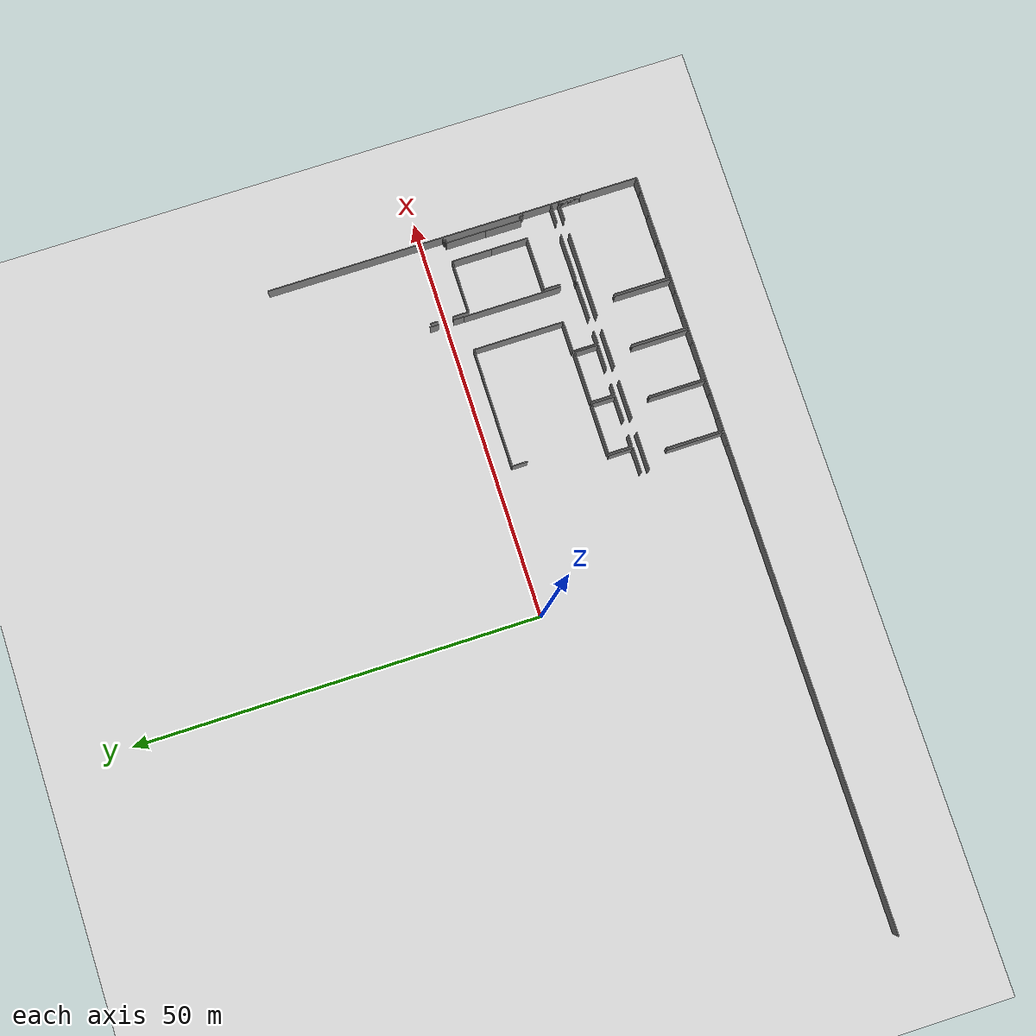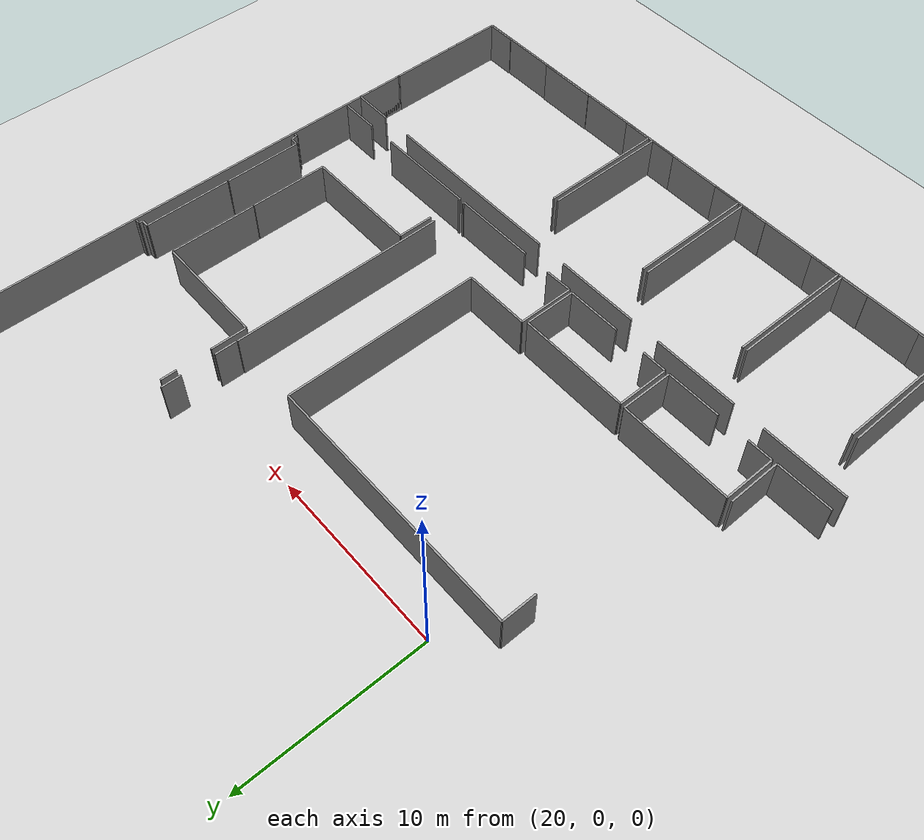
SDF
<sdf version="1.6">
 <world name="default">
  <model name="ground_plane">
   <static>1</static>
   <link name="link">
    <collision name="collision">
     <geometry><plane><normal>0 0 1</normal><size>100 100</size></plane></geometry>
     <surface><friction><ode><mu>100</mu><mu2>50</mu2></ode></friction></surface>
    </collision>
    <visual name="visual">
     <cast_shadows>0</cast_shadows>
     <geometry><plane><normal>0 0 1</normal><size>100 100</size></plane></geometry>
     <material>
      <script><uri>file://media/materials/scripts/gazebo.material</uri><name>Gazebo/Grey</name></script>
     </material>
    </visual>
   </link>
  </model>
  <model name="50045233">
   <static>1</static>
   <link name="Wall_242">
    <collision name="Wall_242_Collision">
     <geometry><box><size>4.74502712477 0.1 2.5</size></box></geometry>
     <pose>2.37251356239 0 1.25 0 0 0</pose>
    </collision>
    <visual name="Wall_242_Visual">
     <pose>2.37251356239 0 1.25 0 0 0</pose>
     <geometry><box><size>4.74502712477 0.1 2.5</size></box></geometry>
     <material>
      <script><uri>file://media/materials/scripts/gazebo.material</uri><name>Gazebo/Grey</name></script>
      <ambient>1 1 1 1</ambient>
     </material>
    </visual>
    <pose>59.1978680879 -36.5489673551 0 0 0 0.0</pose>
   </link>
   <link name="Wall_243">
    <collision name="Wall_243_Collision">
     <geometry><box><size>4.79781732813 0.1 2.5</size></box></geometry>
     <pose>2.39890866407 0 1.25 0 0 0</pose>
    </collision>
    <visual name="Wall_243_Visual">
     <pose>2.39890866407 0 1.25 0 0 0</pose>
     <geometry><box><size>4.79781732813 0.1 2.5</size></box></geometry>
     <material>
      <script><uri>file://media/materials/scripts/gazebo.material</uri><name>Gazebo/Grey</name></script>
      <ambient>1 1 1 1</ambient>
     </material>
    </visual>
    <pose>65.7041337521 -36.5489673551 0 0 0 0.0</pose>
   </link>
   <link name="Wall_244">
    <collision name="Wall_244_Collision">
     <geometry><box><size>4.74756511532 0.1 2.5</size></box></geometry>
     <pose>2.37378255766 0 1.25 0 0 0</pose>
    </collision>
    <visual name="Wall_244_Visual">
     <pose>2.37378255766 0 1.25 0 0 0</pose>
     <geometry><box><size>4.74756511532 0.1 2.5</size></box></geometry>
     <material>
      <script><uri>file://media/materials/scripts/gazebo.material</uri><name>Gazebo/Grey</name></script>
      <ambient>1 1 1 1</ambient>
     </material>
    </visual>
    <pose>72.2541797532 -36.5489673551 0 0 0 0.0</pose>
   </link>
   <link name="Wall_245">
    <collision name="Wall_245_Collision">
     <geometry><box><size>10.6374797754 0.1 2.5</size></box></geometry>
     <pose>5.31873988769 0 1.25 0 0 0</pose>
    </collision>
    <visual name="Wall_245_Visual">
     <pose>5.31873988769 0 1.25 0 0 0</pose>
     <geometry><box><size>10.6374797754 0.1 2.5</size></box></geometry>
     <material>
      <script><uri>file://media/materials/scripts/gazebo.material</uri><name>Gazebo/Grey</name></script>
      <ambient>1 1 1 1</ambient>
     </material>
    </visual>
    <pose>78.7707242791 -36.5489673551 0 0 0 0.0</pose>
   </link>
   <link name="Wall_246">
    <collision name="Wall_246_Collision">
     <geometry><box><size>2.27657751975 0.1 2.5</size></box></geometry>
     <pose>1.13828875987 0 1.25 0 0 0</pose>
    </collision>
    <visual name="Wall_246_Visual">
     <pose>1.13828875987 0 1.25 0 0 0</pose>
     <geometry><box><size>2.27657751975 0.1 2.5</size></box></geometry>
     <material>
      <script><uri>file://media/materials/scripts/gazebo.material</uri><name>Gazebo/Grey</name></script>
      <ambient>1 1 1 1</ambient>
     </material>
    </visual>
    <pose>91.2660131341 -36.5489673551 0 0 0 0.0</pose>
   </link>
   <link name="Wall_247">
    <collision name="Wall_247_Collision">
     <geometry><box><size>2.67707242791 0.1 2.5</size></box></geometry>
     <pose>1.33853621395 0 1.25 0 0 0</pose>
    </collision>
    <visual name="Wall_247_Visual">
     <pose>1.33853621395 0 1.25 0 0 0</pose>
     <geometry><box><size>2.67707242791 0.1 2.5</size></box></geometry>
     <material>
      <script><uri>file://media/materials/scripts/gazebo.material</uri><name>Gazebo/Grey</name></script>
      <ambient>1 1 1 1</ambient>
     </material>
    </visual>
    <pose>93.5425906538 -36.5489673551 0 0 0 -1.57079632679</pose>
   </link>
   <link name="Wall_265">
    <collision name="Wall_265_Collision">
     <geometry><box><size>1.57901081818 0.1 2.5</size></box></geometry>
     <pose>0.789505409092 0 1.25 0 0 0</pose>
    </collision>
    <visual name="Wall_265_Visual">
     <pose>0.789505409092 0 1.25 0 0 0</pose>
     <geometry><box><size>1.57901081818 0.1 2.5</size></box></geometry>
     <material>
      <script><uri>file://media/materials/scripts/gazebo.material</uri><name>Gazebo/Grey</name></script>
      <ambient>1 1 1 1</ambient>
     </material>
    </visual>
    <pose>60.8834745091 -46.4015735541 0 0 0 3.14159265359</pose>
   </link>
   <link name="Wall_268">
    <collision name="Wall_268_Collision">
     <geometry><box><size>7.07969804936 0.1 2.5</size></box></geometry>
     <pose>3.53984902468 0 1.25 0 0 0</pose>
    </collision>
    <visual name="Wall_268_Visual">
     <pose>3.53984902468 0 1.25 0 0 0</pose>
     <geometry><box><size>7.07969804936 0.1 2.5</size></box></geometry>
     <material>
      <script><uri>file://media/materials/scripts/gazebo.material</uri><name>Gazebo/Grey</name></script>
      <ambient>1 1 1 1</ambient>
     </material>
    </visual>
    <pose>60.8457853494 -39.3219758256 0 0 0 -1.56547274698</pose>
   </link>
   <link name="Wall_269">
    <collision name="Wall_269_Collision">
     <geometry><box><size>1.60895910663 0.1 2.5</size></box></geometry>
     <pose>0.804479553314 0 1.25 0 0 0</pose>
    </collision>
    <visual name="Wall_269_Visual">
     <pose>0.804479553314 0 1.25 0 0 0</pose>
     <geometry><box><size>1.60895910663 0.1 2.5</size></box></geometry>
     <material>
      <script><uri>file://media/materials/scripts/gazebo.material</uri><name>Gazebo/Grey</name></script>
      <ambient>1 1 1 1</ambient>
     </material>
    </visual>
    <pose>67.4049681165 -46.3905332953 0 0 0 3.14159265359</pose>
   </link>
   <link name="Wall_270">
    <collision name="Wall_270_Collision">
     <geometry><box><size>1.60350242695 0.1 2.5</size></box></geometry>
     <pose>0.801751213477 0 1.25 0 0 0</pose>
    </collision>
    <visual name="Wall_270_Visual">
     <pose>0.801751213477 0 1.25 0 0 0</pose>
     <geometry><box><size>1.60350242695 0.1 2.5</size></box></geometry>
     <material>
      <script><uri>file://media/materials/scripts/gazebo.material</uri><name>Gazebo/Grey</name></script>
      <ambient>1 1 1 1</ambient>
     </material>
    </visual>
    <pose>62.7312585261 -46.3905332953 0 0 0 3.14159265359</pose>
   </link>
   <link name="Wall_271">
    <collision name="Wall_271_Collision">
     <geometry><box><size>7.06449668475 0.1 2.5</size></box></geometry>
     <pose>3.53224834237 0 1.25 0 0 0</pose>
    </collision>
    <visual name="Wall_271_Visual">
     <pose>3.53224834237 0 1.25 0 0 0</pose>
     <geometry><box><size>7.06449668475 0.1 2.5</size></box></geometry>
     <material>
      <script><uri>file://media/materials/scripts/gazebo.material</uri><name>Gazebo/Grey</name></script>
      <ambient>1 1 1 1</ambient>
     </material>
    </visual>
    <pose>61.1277560991 -46.3905332953 0 0 0 1.57079632679</pose>
   </link>
   <link name="Wall_272">
    <collision name="Wall_272_Collision">
     <geometry><box><size>7.06451337178 0.1 2.5</size></box></geometry>
     <pose>3.53225668589 0 1.25 0 0 0</pose>
    </collision>
    <visual name="Wall_272_Visual">
     <pose>3.53225668589 0 1.25 0 0 0</pose>
     <geometry><box><size>7.06451337178 0.1 2.5</size></box></geometry>
     <material>
      <script><uri>file://media/materials/scripts/gazebo.material</uri><name>Gazebo/Grey</name></script>
      <ambient>1 1 1 1</ambient>
     </material>
    </visual>
    <pose>67.3896132737 -39.3260366105 0 0 0 -1.56862280767</pose>
   </link>
   <link name="Wall_273">
    <collision name="Wall_273_Collision">
     <geometry><box><size>1.57774182291 0.1 2.5</size></box></geometry>
     <pose>0.788870911456 0 1.25 0 0 0</pose>
    </collision>
    <visual name="Wall_273_Visual">
     <pose>0.788870911456 0 1.25 0 0 0</pose>
     <geometry><box><size>1.57774182291 0.1 2.5</size></box></geometry>
     <material>
      <script><uri>file://media/materials/scripts/gazebo.material</uri><name>Gazebo/Grey</name></script>
      <ambient>1 1 1 1</ambient>
     </material>
    </visual>
    <pose>73.8934678468 -46.4015735541 0 0 0 3.14159265359</pose>
   </link>
   <link name="Wall_274">
    <collision name="Wall_274_Collision">
     <geometry><box><size>1.63243551918 0.1 2.5</size></box></geometry>
     <pose>0.816217759589 0 1.25 0 0 0</pose>
    </collision>
    <visual name="Wall_274_Visual">
     <pose>0.816217759589 0 1.25 0 0 0</pose>
     <geometry><box><size>1.63243551918 0.1 2.5</size></box></geometry>
     <material>
      <script><uri>file://media/materials/scripts/gazebo.material</uri><name>Gazebo/Grey</name></script>
      <ambient>1 1 1 1</ambient>
     </material>
    </visual>
    <pose>69.2757209479 -46.4015735541 0 0 0 3.14159265359</pose>
   </link>
   <link name="Wall_275">
    <collision name="Wall_275_Collision">
     <geometry><box><size>7.07553694362 0.1 2.5</size></box></geometry>
     <pose>3.53776847181 0 1.25 0 0 0</pose>
    </collision>
    <visual name="Wall_275_Visual">
     <pose>3.53776847181 0 1.25 0 0 0</pose>
     <geometry><box><size>7.07553694362 0.1 2.5</size></box></geometry>
     <material>
      <script><uri>file://media/materials/scripts/gazebo.material</uri><name>Gazebo/Grey</name></script>
      <ambient>1 1 1 1</ambient>
     </material>
    </visual>
    <pose>67.6432854288 -46.4015735541 0 0 0 1.57079632679</pose>
   </link>
   <link name="Wall_276">
    <collision name="Wall_276_Collision">
     <geometry><box><size>7.07556792478 0.1 2.5</size></box></geometry>
     <pose>3.53778396239 0 1.25 0 0 0</pose>
    </collision>
    <visual name="Wall_276_Visual">
     <pose>3.53778396239 0 1.25 0 0 0</pose>
     <geometry><box><size>7.07556792478 0.1 2.5</size></box></geometry>
     <material>
      <script><uri>file://media/materials/scripts/gazebo.material</uri><name>Gazebo/Grey</name></script>
      <ambient>1 1 1 1</ambient>
     </material>
    </visual>
    <pose>73.8725294248 -39.3260366105 0 0 0 -1.56783706575</pose>
   </link>
   <link name="Wall_277">
    <collision name="Wall_277_Collision">
     <geometry><box><size>1.56149868342 0.1 2.5</size></box></geometry>
     <pose>0.780749341709 0 1.25 0 0 0</pose>
    </collision>
    <visual name="Wall_277_Visual">
     <pose>0.780749341709 0 1.25 0 0 0</pose>
     <geometry><box><size>1.56149868342 0.1 2.5</size></box></geometry>
     <material>
      <script><uri>file://media/materials/scripts/gazebo.material</uri><name>Gazebo/Grey</name></script>
      <ambient>1 1 1 1</ambient>
     </material>
    </visual>
    <pose>80.3647092415 -46.4175628946 0 0 0 3.14159265359</pose>
   </link>
   <link name="Wall_278">
    <collision name="Wall_278_Collision">
     <geometry><box><size>1.59664985248 0.1 2.5</size></box></geometry>
     <pose>0.79832492624 0 1.25 0 0 0</pose>
    </collision>
    <visual name="Wall_278_Visual">
     <pose>0.79832492624 0 1.25 0 0 0</pose>
     <geometry><box><size>1.59664985248 0.1 2.5</size></box></geometry>
     <material>
      <script><uri>file://media/materials/scripts/gazebo.material</uri><name>Gazebo/Grey</name></script>
      <ambient>1 1 1 1</ambient>
     </material>
    </visual>
    <pose>75.7698042575 -46.4175628946 0 0 0 3.14159265359</pose>
   </link>
   <link name="Wall_279">
    <collision name="Wall_279_Collision">
     <geometry><box><size>7.0921607817 0.1 2.5</size></box></geometry>
     <pose>3.54608039085 0 1.25 0 0 0</pose>
    </collision>
    <visual name="Wall_279_Visual">
     <pose>3.54608039085 0 1.25 0 0 0</pose>
     <geometry><box><size>7.0921607817 0.1 2.5</size></box></geometry>
     <material>
      <script><uri>file://media/materials/scripts/gazebo.material</uri><name>Gazebo/Grey</name></script>
      <ambient>1 1 1 1</ambient>
     </material>
    </visual>
    <pose>74.173154405 -46.4175628946 0 0 0 1.57079632679</pose>
   </link>
   <link name="Wall_280">
    <collision name="Wall_280_Collision">
     <geometry><box><size>7.0921859865 0.1 2.5</size></box></geometry>
     <pose>3.54609299325 0 1.25 0 0 0</pose>
    </collision>
    <visual name="Wall_280_Visual">
     <pose>3.54609299325 0 1.25 0 0 0</pose>
     <geometry><box><size>7.0921859865 0.1 2.5</size></box></geometry>
     <material>
      <script><uri>file://media/materials/scripts/gazebo.material</uri><name>Gazebo/Grey</name></script>
      <ambient>1 1 1 1</ambient>
     </material>
    </visual>
    <pose>80.383617271 -39.3254021129 0 0 0 -1.57346236686</pose>
   </link>
   <link name="Wall_281">
    <collision name="Wall_281_Collision">
     <geometry><box><size>1.70045366581 0.1 2.5</size></box></geometry>
     <pose>0.850226832905 0 1.25 0 0 0</pose>
    </collision>
    <visual name="Wall_281_Visual">
     <pose>0.850226832905 0 1.25 0 0 0</pose>
     <geometry><box><size>1.70045366581 0.1 2.5</size></box></geometry>
     <material>
      <script><uri>file://media/materials/scripts/gazebo.material</uri><name>Gazebo/Grey</name></script>
      <ambient>1 1 1 1</ambient>
     </material>
    </visual>
    <pose>93.5425906538 -46.3883760033 0 0 0 3.14159265359</pose>
   </link>
   <link name="Wall_282">
    <collision name="Wall_282_Collision">
     <geometry><box><size>3.43948478792 0.1 2.5</size></box></geometry>
     <pose>1.71974239396 0 1.25 0 0 0</pose>
    </collision>
    <visual name="Wall_282_Visual">
     <pose>1.71974239396 0 1.25 0 0 0</pose>
     <geometry><box><size>3.43948478792 0.1 2.5</size></box></geometry>
     <material>
      <script><uri>file://media/materials/scripts/gazebo.material</uri><name>Gazebo/Grey</name></script>
      <ambient>1 1 1 1</ambient>
     </material>
    </visual>
    <pose>88.7568287808 -46.3883760033 0 0 0 3.14159265359</pose>
   </link>
   <link name="Wall_283">
    <collision name="Wall_283_Collision">
     <geometry><box><size>1.63154722249 0.1 2.5</size></box></geometry>
     <pose>0.815773611243 0 1.25 0 0 0</pose>
    </collision>
    <visual name="Wall_283_Visual">
     <pose>0.815773611243 0 1.25 0 0 0</pose>
     <geometry><box><size>1.63154722249 0.1 2.5</size></box></geometry>
     <material>
      <script><uri>file://media/materials/scripts/gazebo.material</uri><name>Gazebo/Grey</name></script>
      <ambient>1 1 1 1</ambient>
     </material>
    </visual>
    <pose>82.2873639796 -46.3883760033 0 0 0 3.14159265359</pose>
   </link>
   <link name="Wall_284">
    <collision name="Wall_284_Collision">
     <geometry><box><size>7.07020716348 0.1 2.5</size></box></geometry>
     <pose>3.53510358174 0 1.25 0 0 0</pose>
    </collision>
    <visual name="Wall_284_Visual">
     <pose>3.53510358174 0 1.25 0 0 0</pose>
     <geometry><box><size>7.07020716348 0.1 2.5</size></box></geometry>
     <material>
      <script><uri>file://media/materials/scripts/gazebo.material</uri><name>Gazebo/Grey</name></script>
      <ambient>1 1 1 1</ambient>
     </material>
    </visual>
    <pose>80.6558167571 -46.3883760033 0 0 0 1.57079632679</pose>
   </link>
   <link name="Wall_285">
    <collision name="Wall_285_Collision">
     <geometry><box><size>7.07021099449 0.1 2.5</size></box></geometry>
     <pose>3.53510549725 0 1.25 0 0 0</pose>
    </collision>
    <visual name="Wall_285_Visual">
     <pose>3.53510549725 0 1.25 0 0 0</pose>
     <geometry><box><size>7.07021099449 0.1 2.5</size></box></geometry>
     <material>
      <script><uri>file://media/materials/scripts/gazebo.material</uri><name>Gazebo/Grey</name></script>
      <ambient>1 1 1 1</ambient>
     </material>
    </visual>
    <pose>93.5352304813 -39.3181688398 0 0 0 -1.56975531488</pose>
   </link>
   <link name="Wall_286">
    <collision name="Wall_286_Collision">
     <geometry><box><size>0.113828875987 0.1 2.5</size></box></geometry>
     <pose>0.0569144379937 0 1.25 0 0 0</pose>
    </collision>
    <visual name="Wall_286_Visual">
     <pose>0.0569144379937 0 1.25 0 0 0</pose>
     <geometry><box><size>0.113828875987 0.1 2.5</size></box></geometry>
     <material>
      <script><uri>file://media/materials/scripts/gazebo.material</uri><name>Gazebo/Grey</name></script>
      <ambient>1 1 1 1</ambient>
     </material>
    </visual>
    <pose>83.7695504584 -35.565369119 0 0 0 1.57079632679</pose>
   </link>
   <link name="Wall_287">
    <collision name="Wall_287_Collision">
     <geometry><box><size>1.9993020526 0.1 2.5</size></box></geometry>
     <pose>0.9996510263 0 1.25 0 0 0</pose>
    </collision>
    <visual name="Wall_287_Visual">
     <pose>0.9996510263 0 1.25 0 0 0</pose>
     <geometry><box><size>1.9993020526 0.1 2.5</size></box></geometry>
     <material>
      <script><uri>file://media/materials/scripts/gazebo.material</uri><name>Gazebo/Grey</name></script>
      <ambient>1 1 1 1</ambient>
     </material>
    </visual>
    <pose>83.7695504584 -33.5461438406 0 0 0 1.57079632679</pose>
   </link>
   <link name="Wall_288">
    <collision name="Wall_288_Collision">
     <geometry><box><size>6.6105770756 0.1 2.5</size></box></geometry>
     <pose>3.3052885378 0 1.25 0 0 0</pose>
    </collision>
    <visual name="Wall_288_Visual">
     <pose>3.3052885378 0 1.25 0 0 0</pose>
     <geometry><box><size>6.6105770756 0.1 2.5</size></box></geometry>
     <material>
      <script><uri>file://media/materials/scripts/gazebo.material</uri><name>Gazebo/Grey</name></script>
      <ambient>1 1 1 1</ambient>
     </material>
    </visual>
    <pose>83.7695504584 -31.546841788 0 0 0 0.0</pose>
   </link>
   <link name="Wall_289">
    <collision name="Wall_289_Collision">
     <geometry><box><size>4.45100092002 0.1 2.5</size></box></geometry>
     <pose>2.22550046001 0 1.25 0 0 0</pose>
    </collision>
    <visual name="Wall_289_Visual">
     <pose>2.22550046001 0 1.25 0 0 0</pose>
     <geometry><box><size>4.45100092002 0.1 2.5</size></box></geometry>
     <material>
      <script><uri>file://media/materials/scripts/gazebo.material</uri><name>Gazebo/Grey</name></script>
      <ambient>1 1 1 1</ambient>
     </material>
    </visual>
    <pose>90.380127534 -31.546841788 0 0 0 1.57079632679</pose>
   </link>
   <link name="Wall_290">
    <collision name="Wall_290_Collision">
     <geometry><box><size>4.45100092002 0.1 2.5</size></box></geometry>
     <pose>2.22550046001 0 1.25 0 0 0</pose>
    </collision>
    <visual name="Wall_290_Visual">
     <pose>2.22550046001 0 1.25 0 0 0</pose>
     <geometry><box><size>4.45100092002 0.1 2.5</size></box></geometry>
     <material>
      <script><uri>file://media/materials/scripts/gazebo.material</uri><name>Gazebo/Grey</name></script>
      <ambient>1 1 1 1</ambient>
     </material>
    </visual>
    <pose>92.7465499191 -27.095840868 0 0 0 -1.57079632679</pose>
   </link>
   <link name="Wall_291">
    <collision name="Wall_291_Collision">
     <geometry><box><size>0.474984930681 0.1 2.5</size></box></geometry>
     <pose>0.237492465341 0 1.25 0 0 0</pose>
    </collision>
    <visual name="Wall_291_Visual">
     <pose>0.237492465341 0 1.25 0 0 0</pose>
     <geometry><box><size>0.474984930681 0.1 2.5</size></box></geometry>
     <material>
      <script><uri>file://media/materials/scripts/gazebo.material</uri><name>Gazebo/Grey</name></script>
      <ambient>1 1 1 1</ambient>
     </material>
    </visual>
    <pose>92.7465499191 -31.546841788 0 0 0 0.0</pose>
   </link>
   <link name="Wall_292">
    <collision name="Wall_292_Collision">
     <geometry><box><size>0.364836140985 0.1 2.5</size></box></geometry>
     <pose>0.182418070493 0 1.25 0 0 0</pose>
    </collision>
    <visual name="Wall_292_Visual">
     <pose>0.182418070493 0 1.25 0 0 0</pose>
     <geometry><box><size>0.364836140985 0.1 2.5</size></box></geometry>
     <material>
      <script><uri>file://media/materials/scripts/gazebo.material</uri><name>Gazebo/Grey</name></script>
      <ambient>1 1 1 1</ambient>
     </material>
    </visual>
    <pose>93.2215348498 -31.546841788 0 0 0 -1.57079632679</pose>
   </link>
   <link name="Wall_293">
    <collision name="Wall_293_Collision">
     <geometry><box><size>0.192379683386 0.1 2.5</size></box></geometry>
     <pose>0.0961898416928 0 1.25 0 0 0</pose>
    </collision>
    <visual name="Wall_293_Visual">
     <pose>0.0961898416928 0 1.25 0 0 0</pose>
     <geometry><box><size>0.192379683386 0.1 2.5</size></box></geometry>
     <material>
      <script><uri>file://media/materials/scripts/gazebo.material</uri><name>Gazebo/Grey</name></script>
      <ambient>1 1 1 1</ambient>
     </material>
    </visual>
    <pose>93.2215348498 -31.911677929 0 0 0 0.0</pose>
   </link>
   <link name="Wall_294">
    <collision name="Wall_294_Collision">
     <geometry><box><size>2.20069160242 0.1 2.5</size></box></geometry>
     <pose>1.10034580121 0 1.25 0 0 0</pose>
    </collision>
    <visual name="Wall_294_Visual">
     <pose>1.10034580121 0 1.25 0 0 0</pose>
     <geometry><box><size>2.20069160242 0.1 2.5</size></box></geometry>
     <material>
      <script><uri>file://media/materials/scripts/gazebo.material</uri><name>Gazebo/Grey</name></script>
      <ambient>1 1 1 1</ambient>
     </material>
    </visual>
    <pose>93.4139145332 -35.5387202183 0 0 0 3.14159265359</pose>
   </link>
   <link name="Wall_295">
    <collision name="Wall_295_Collision">
     <geometry><box><size>5.77931971269 0.1 2.5</size></box></geometry>
     <pose>2.88965985634 0 1.25 0 0 0</pose>
    </collision>
    <visual name="Wall_295_Visual">
     <pose>2.88965985634 0 1.25 0 0 0</pose>
     <geometry><box><size>5.77931971269 0.1 2.5</size></box></geometry>
     <material>
      <script><uri>file://media/materials/scripts/gazebo.material</uri><name>Gazebo/Grey</name></script>
      <ambient>1 1 1 1</ambient>
     </material>
    </visual>
    <pose>89.5488087307 -35.5387202183 0 0 0 -3.13698155808</pose>
   </link>
   <link name="Wall_296">
    <collision name="Wall_296_Collision">
     <geometry><box><size>3.15218425811 0.1 2.5</size></box></geometry>
     <pose>1.57609212906 0 1.25 0 0 0</pose>
    </collision>
    <visual name="Wall_296_Visual">
     <pose>1.57609212906 0 1.25 0 0 0</pose>
     <geometry><box><size>3.15218425811 0.1 2.5</size></box></geometry>
     <material>
      <script><uri>file://media/materials/scripts/gazebo.material</uri><name>Gazebo/Grey</name></script>
      <ambient>1 1 1 1</ambient>
     </material>
    </visual>
    <pose>75.5634656261 -35.6038196758 0 0 0 1.57079632679</pose>
   </link>
   <link name="Wall_297">
    <collision name="Wall_297_Collision">
     <geometry><box><size>3.72132863805 0.1 2.5</size></box></geometry>
     <pose>1.86066431903 0 1.25 0 0 0</pose>
    </collision>
    <visual name="Wall_297_Visual">
     <pose>1.86066431903 0 1.25 0 0 0</pose>
     <geometry><box><size>3.72132863805 0.1 2.5</size></box></geometry>
     <material>
      <script><uri>file://media/materials/scripts/gazebo.material</uri><name>Gazebo/Grey</name></script>
      <ambient>1 1 1 1</ambient>
     </material>
    </visual>
    <pose>75.5634656261 -32.4516354177 0 0 0 0.0</pose>
   </link>
   <link name="Wall_298">
    <collision name="Wall_298_Collision">
     <geometry><box><size>11.0757907427 0.1 2.5</size></box></geometry>
     <pose>5.53789537134 0 1.25 0 0 0</pose>
    </collision>
    <visual name="Wall_298_Visual">
     <pose>5.53789537134 0 1.25 0 0 0</pose>
     <geometry><box><size>11.0757907427 0.1 2.5</size></box></geometry>
     <material>
      <script><uri>file://media/materials/scripts/gazebo.material</uri><name>Gazebo/Grey</name></script>
      <ambient>1 1 1 1</ambient>
     </material>
    </visual>
    <pose>79.2847942641 -32.4516354177 0 0 0 1.57079632679</pose>
   </link>
   <link name="Wall_299">
    <collision name="Wall_299_Collision">
     <geometry><box><size>12.169664668 0.1 2.5</size></box></geometry>
     <pose>6.084832334 0 1.25 0 0 0</pose>
    </collision>
    <visual name="Wall_299_Visual">
     <pose>6.084832334 0 1.25 0 0 0</pose>
     <geometry><box><size>12.169664668 0.1 2.5</size></box></geometry>
     <material>
      <script><uri>file://media/materials/scripts/gazebo.material</uri><name>Gazebo/Grey</name></script>
      <ambient>1 1 1 1</ambient>
     </material>
    </visual>
    <pose>83.458519717 -21.375844675 0 0 0 -1.57079632679</pose>
   </link>
   <link name="Wall_300">
    <collision name="Wall_300_Collision">
     <geometry><box><size>0.114209574569 0.1 2.5</size></box></geometry>
     <pose>0.0571047872847 0 1.25 0 0 0</pose>
    </collision>
    <visual name="Wall_300_Visual">
     <pose>0.0571047872847 0 1.25 0 0 0</pose>
     <geometry><box><size>0.114209574569 0.1 2.5</size></box></geometry>
     <material>
      <script><uri>file://media/materials/scripts/gazebo.material</uri><name>Gazebo/Grey</name></script>
      <ambient>1 1 1 1</ambient>
     </material>
    </visual>
    <pose>83.458519717 -35.4490022525 0 0 0 -1.57079632679</pose>
   </link>
   <link name="Wall_301">
    <collision name="Wall_301_Collision">
     <geometry><box><size>4.70708416611 0.1 2.5</size></box></geometry>
     <pose>2.35354208306 0 1.25 0 0 0</pose>
    </collision>
    <visual name="Wall_301_Visual">
     <pose>2.35354208306 0 1.25 0 0 0</pose>
     <geometry><box><size>4.70708416611 0.1 2.5</size></box></geometry>
     <material>
      <script><uri>file://media/materials/scripts/gazebo.material</uri><name>Gazebo/Grey</name></script>
      <ambient>1 1 1 1</ambient>
     </material>
    </visual>
    <pose>83.458519717 -35.563211827 0 0 0 3.14159265359</pose>
   </link>
   <link name="Wall_302">
    <collision name="Wall_302_Collision">
     <geometry><box><size>1.55263923967 0.1 2.5</size></box></geometry>
     <pose>0.776319619837 0 1.25 0 0 0</pose>
    </collision>
    <visual name="Wall_302_Visual">
     <pose>0.776319619837 0 1.25 0 0 0</pose>
     <geometry><box><size>1.55263923967 0.1 2.5</size></box></geometry>
     <material>
      <script><uri>file://media/materials/scripts/gazebo.material</uri><name>Gazebo/Grey</name></script>
      <ambient>1 1 1 1</ambient>
     </material>
    </visual>
    <pose>77.1155737445 -35.563211827 0 0 0 -3.11543559234</pose>
   </link>
   <link name="Wall_303">
    <collision name="Wall_303_Collision">
     <geometry><box><size>4.90162114146 0.1 2.5</size></box></geometry>
     <pose>2.45081057073 0 1.25 0 0 0</pose>
    </collision>
    <visual name="Wall_303_Visual">
     <pose>2.45081057073 0 1.25 0 0 0</pose>
     <geometry><box><size>4.90162114146 0.1 2.5</size></box></geometry>
     <material>
      <script><uri>file://media/materials/scripts/gazebo.material</uri><name>Gazebo/Grey</name></script>
      <ambient>1 1 1 1</ambient>
     </material>
    </visual>
    <pose>90.3688334761 -27.051552933 0 0 0 1.57079632679</pose>
   </link>
   <link name="Wall_304">
    <collision name="Wall_304_Collision">
     <geometry><box><size>6.50994575045 0.1 2.5</size></box></geometry>
     <pose>3.25497287523 0 1.25 0 0 0</pose>
    </collision>
    <visual name="Wall_304_Visual">
     <pose>3.25497287523 0 1.25 0 0 0</pose>
     <geometry><box><size>6.50994575045 0.1 2.5</size></box></geometry>
     <material>
      <script><uri>file://media/materials/scripts/gazebo.material</uri><name>Gazebo/Grey</name></script>
      <ambient>1 1 1 1</ambient>
     </material>
    </visual>
    <pose>90.3688334761 -22.1499317915 0 0 0 3.14159265359</pose>
   </link>
   <link name="Wall_305">
    <collision name="Wall_305_Collision">
     <geometry><box><size>2.01110370864 0.1 2.5</size></box></geometry>
     <pose>1.00555185432 0 1.25 0 0 0</pose>
    </collision>
    <visual name="Wall_305_Visual">
     <pose>1.00555185432 0 1.25 0 0 0</pose>
     <geometry><box><size>2.01110370864 0.1 2.5</size></box></geometry>
     <material>
      <script><uri>file://media/materials/scripts/gazebo.material</uri><name>Gazebo/Grey</name></script>
      <ambient>1 1 1 1</ambient>
     </material>
    </visual>
    <pose>83.8588877256 -22.1499317915 0 0 0 1.57079632679</pose>
   </link>
   <link name="Wall_306">
    <collision name="Wall_306_Collision">
     <geometry><box><size>0.873195647346 0.1 2.5</size></box></geometry>
     <pose>0.436597823673 0 1.25 0 0 0</pose>
    </collision>
    <visual name="Wall_306_Visual">
     <pose>0.436597823673 0 1.25 0 0 0</pose>
     <geometry><box><size>0.873195647346 0.1 2.5</size></box></geometry>
     <material>
      <script><uri>file://media/materials/scripts/gazebo.material</uri><name>Gazebo/Grey</name></script>
      <ambient>1 1 1 1</ambient>
     </material>
    </visual>
    <pose>83.8588877256 -18.2312743885 0 0 0 1.57079632679</pose>
   </link>
   <link name="Wall_308">
    <collision name="Wall_308_Collision">
     <geometry><box><size>0.279178960058 0.1 2.5</size></box></geometry>
     <pose>0.139589480029 0 1.25 0 0 0</pose>
    </collision>
    <visual name="Wall_308_Visual">
     <pose>0.139589480029 0 1.25 0 0 0</pose>
     <geometry><box><size>0.279178960058 0.1 2.5</size></box></geometry>
     <material>
      <script><uri>file://media/materials/scripts/gazebo.material</uri><name>Gazebo/Grey</name></script>
      <ambient>1 1 1 1</ambient>
     </material>
    </visual>
    <pose>93.45502998 -21.9062846991 0 0 0 3.14159265359</pose>
   </link>
   <link name="Wall_309">
    <collision name="Wall_309_Collision">
     <geometry><box><size>0.220678277973 0.1 2.5</size></box></geometry>
     <pose>0.110339138987 0 1.25 0 0 0</pose>
    </collision>
    <visual name="Wall_309_Visual">
     <pose>0.110339138987 0 1.25 0 0 0</pose>
     <geometry><box><size>0.220678277973 0.1 2.5</size></box></geometry>
     <material>
      <script><uri>file://media/materials/scripts/gazebo.material</uri><name>Gazebo/Grey</name></script>
      <ambient>1 1 1 1</ambient>
     </material>
    </visual>
    <pose>93.17585102 -21.9062846991 0 0 0 -1.57079632679</pose>
   </link>
   <link name="Wall_310">
    <collision name="Wall_310_Collision">
     <geometry><box><size>0.422194727325 0.1 2.5</size></box></geometry>
     <pose>0.211097363662 0 1.25 0 0 0</pose>
    </collision>
    <visual name="Wall_310_Visual">
     <pose>0.211097363662 0 1.25 0 0 0</pose>
     <geometry><box><size>0.422194727325 0.1 2.5</size></box></geometry>
     <material>
      <script><uri>file://media/materials/scripts/gazebo.material</uri><name>Gazebo/Grey</name></script>
      <ambient>1 1 1 1</ambient>
     </material>
    </visual>
    <pose>93.17585102 -22.1269629771 0 0 0 3.14159265359</pose>
   </link>
   <link name="Wall_311">
    <collision name="Wall_311_Collision">
     <geometry><box><size>4.9245993997 0.1 2.5</size></box></geometry>
     <pose>2.46229969985 0 1.25 0 0 0</pose>
    </collision>
    <visual name="Wall_311_Visual">
     <pose>2.46229969985 0 1.25 0 0 0</pose>
     <geometry><box><size>4.9245993997 0.1 2.5</size></box></geometry>
     <material>
      <script><uri>file://media/materials/scripts/gazebo.material</uri><name>Gazebo/Grey</name></script>
      <ambient>1 1 1 1</ambient>
     </material>
    </visual>
    <pose>92.7536562926 -22.1269629771 0 0 0 -1.56883791973</pose>
   </link>
   <link name="Wall_316">
    <collision name="Wall_316_Collision">
     <geometry><box><size>1.88877256432 0.1 2.5</size></box></geometry>
     <pose>0.944386282161 0 1.25 0 0 0</pose>
    </collision>
    <visual name="Wall_316_Visual">
     <pose>0.944386282161 0 1.25 0 0 0</pose>
     <geometry><box><size>1.88877256432 0.1 2.5</size></box></geometry>
     <material>
      <script><uri>file://media/materials/scripts/gazebo.material</uri><name>Gazebo/Grey</name></script>
      <ambient>1 1 1 1</ambient>
     </material>
    </visual>
    <pose>64.5520129438 -23.2274356778 0 0 0 1.57079632679</pose>
   </link>
   <link name="Wall_317">
    <collision name="Wall_317_Collision">
     <geometry><box><size>14.7511817518 0.1 2.5</size></box></geometry>
     <pose>7.37559087592 0 1.25 0 0 0</pose>
    </collision>
    <visual name="Wall_317_Visual">
     <pose>7.37559087592 0 1.25 0 0 0</pose>
     <geometry><box><size>14.7511817518 0.1 2.5</size></box></geometry>
     <material>
      <script><uri>file://media/materials/scripts/gazebo.material</uri><name>Gazebo/Grey</name></script>
      <ambient>1 1 1 1</ambient>
     </material>
    </visual>
    <pose>64.5520129438 -21.3386631135 0 0 0 0.0</pose>
   </link>
   <link name="Wall_318">
    <collision name="Wall_318_Collision">
     <geometry><box><size>1.24450366422 0.1 2.5</size></box></geometry>
     <pose>0.622251832112 0 1.25 0 0 0</pose>
    </collision>
    <visual name="Wall_318_Visual">
     <pose>0.622251832112 0 1.25 0 0 0</pose>
     <geometry><box><size>1.24450366422 0.1 2.5</size></box></geometry>
     <material>
      <script><uri>file://media/materials/scripts/gazebo.material</uri><name>Gazebo/Grey</name></script>
      <ambient>1 1 1 1</ambient>
     </material>
    </visual>
    <pose>83.4781891437 -21.3386631135 0 0 0 1.57079632679</pose>
   </link>
   <link name="Wall_319">
    <collision name="Wall_319_Collision">
     <geometry><box><size>1.09387392532 0.1 2.5</size></box></geometry>
     <pose>0.54693696266 0 1.25 0 0 0</pose>
    </collision>
    <visual name="Wall_319_Visual">
     <pose>0.54693696266 0 1.25 0 0 0</pose>
     <geometry><box><size>1.09387392532 0.1 2.5</size></box></geometry>
     <material>
      <script><uri>file://media/materials/scripts/gazebo.material</uri><name>Gazebo/Grey</name></script>
      <ambient>1 1 1 1</ambient>
     </material>
    </visual>
    <pose>83.4781891437 -18.2409187526 0 0 0 1.57079632679</pose>
   </link>
   <link name="Wall_371">
    <collision name="Wall_371_Collision">
     <geometry><box><size>2.91868912788 0.1 2.5</size></box></geometry>
     <pose>1.45934456394 0 1.25 0 0 0</pose>
    </collision>
    <visual name="Wall_371_Visual">
     <pose>1.45934456394 0 1.25 0 0 0</pose>
     <geometry><box><size>2.91868912788 0.1 2.5</size></box></geometry>
     <material>
      <script><uri>file://media/materials/scripts/gazebo.material</uri><name>Gazebo/Grey</name></script>
      <ambient>1 1 1 1</ambient>
     </material>
    </visual>
    <pose>69.0693823166 -35.5454458932 0 0 0 1.57079632679</pose>
   </link>
   <link name="Wall_372">
    <collision name="Wall_372_Collision">
     <geometry><box><size>6.2782272136 0.1 2.5</size></box></geometry>
     <pose>3.1391136068 0 1.25 0 0 0</pose>
    </collision>
    <visual name="Wall_372_Visual">
     <pose>3.1391136068 0 1.25 0 0 0</pose>
     <geometry><box><size>6.2782272136 0.1 2.5</size></box></geometry>
     <material>
      <script><uri>file://media/materials/scripts/gazebo.material</uri><name>Gazebo/Grey</name></script>
      <ambient>1 1 1 1</ambient>
     </material>
    </visual>
    <pose>69.0693823166 -32.6267567653 0 0 0 0.0</pose>
   </link>
   <link name="Wall_373">
    <collision name="Wall_373_Collision">
     <geometry><box><size>2.92427270708 0.1 2.5</size></box></geometry>
     <pose>1.46213635354 0 1.25 0 0 0</pose>
    </collision>
    <visual name="Wall_373_Visual">
     <pose>1.46213635354 0 1.25 0 0 0</pose>
     <geometry><box><size>2.92427270708 0.1 2.5</size></box></geometry>
     <material>
      <script><uri>file://media/materials/scripts/gazebo.material</uri><name>Gazebo/Grey</name></script>
      <ambient>1 1 1 1</ambient>
     </material>
    </visual>
    <pose>75.3476095302 -32.6267567653 0 0 0 -1.57079632679</pose>
   </link>
   <link name="Wall_374">
    <collision name="Wall_374_Collision">
     <geometry><box><size>3.08010532661 0.1 2.5</size></box></geometry>
     <pose>1.5400526633 0 1.25 0 0 0</pose>
    </collision>
    <visual name="Wall_374_Visual">
     <pose>1.5400526633 0 1.25 0 0 0</pose>
     <geometry><box><size>3.08010532661 0.1 2.5</size></box></geometry>
     <material>
      <script><uri>file://media/materials/scripts/gazebo.material</uri><name>Gazebo/Grey</name></script>
      <ambient>1 1 1 1</ambient>
     </material>
    </visual>
    <pose>75.3476095302 -35.5510294724 0 0 0 3.14159265359</pose>
   </link>
   <link name="Wall_375">
    <collision name="Wall_375_Collision">
     <geometry><box><size>1.39222591063 0.1 2.5</size></box></geometry>
     <pose>0.696112955316 0 1.25 0 0 0</pose>
    </collision>
    <visual name="Wall_375_Visual">
     <pose>0.696112955316 0 1.25 0 0 0</pose>
     <geometry><box><size>1.39222591063 0.1 2.5</size></box></geometry>
     <material>
      <script><uri>file://media/materials/scripts/gazebo.material</uri><name>Gazebo/Grey</name></script>
      <ambient>1 1 1 1</ambient>
     </material>
    </visual>
    <pose>70.4615970306 -35.5510294724 0 0 0 3.13758210176</pose>
   </link>
   <link name="Wall_376">
    <collision name="Wall_376_Collision">
     <geometry><box><size>1.39043812062 0.1 2.5</size></box></geometry>
     <pose>0.695219060309 0 1.25 0 0 0</pose>
    </collision>
    <visual name="Wall_376_Visual">
     <pose>0.695219060309 0 1.25 0 0 0</pose>
     <geometry><box><size>1.39043812062 0.1 2.5</size></box></geometry>
     <material>
      <script><uri>file://media/materials/scripts/gazebo.material</uri><name>Gazebo/Grey</name></script>
      <ambient>1 1 1 1</ambient>
     </material>
    </visual>
    <pose>62.5717458202 -35.5432886012 0 0 0 0.0</pose>
   </link>
   <link name="Wall_377">
    <collision name="Wall_377_Collision">
     <geometry><box><size>3.06462358428 0.1 2.5</size></box></geometry>
     <pose>1.53231179214 0 1.25 0 0 0</pose>
    </collision>
    <visual name="Wall_377_Visual">
     <pose>1.53231179214 0 1.25 0 0 0</pose>
     <geometry><box><size>3.06462358428 0.1 2.5</size></box></geometry>
     <material>
      <script><uri>file://media/materials/scripts/gazebo.material</uri><name>Gazebo/Grey</name></script>
      <ambient>1 1 1 1</ambient>
     </material>
    </visual>
    <pose>65.7420767108 -35.5432886012 0 0 0 0.0</pose>
   </link>
   <link name="Wall_378">
    <collision name="Wall_378_Collision">
     <geometry><box><size>2.94762222011 0.1 2.5</size></box></geometry>
     <pose>1.47381111005 0 1.25 0 0 0</pose>
    </collision>
    <visual name="Wall_378_Visual">
     <pose>1.47381111005 0 1.25 0 0 0</pose>
     <geometry><box><size>2.94762222011 0.1 2.5</size></box></geometry>
     <material>
      <script><uri>file://media/materials/scripts/gazebo.material</uri><name>Gazebo/Grey</name></script>
      <ambient>1 1 1 1</ambient>
     </material>
    </visual>
    <pose>68.806700295 -35.5432886012 0 0 0 1.57079632679</pose>
   </link>
   <link name="Wall_379">
    <collision name="Wall_379_Collision">
     <geometry><box><size>6.24015735541 0.1 2.5</size></box></geometry>
     <pose>3.12007867771 0 1.25 0 0 0</pose>
    </collision>
    <visual name="Wall_379_Visual">
     <pose>3.12007867771 0 1.25 0 0 0</pose>
     <geometry><box><size>6.24015735541 0.1 2.5</size></box></geometry>
     <material>
      <script><uri>file://media/materials/scripts/gazebo.material</uri><name>Gazebo/Grey</name></script>
      <ambient>1 1 1 1</ambient>
     </material>
    </visual>
    <pose>68.806700295 -32.5956663811 0 0 0 3.14159265359</pose>
   </link>
   <link name="Wall_380">
    <collision name="Wall_380_Collision">
     <geometry><box><size>2.94762681193 0.1 2.5</size></box></geometry>
     <pose>1.47381340597 0 1.25 0 0 0</pose>
    </collision>
    <visual name="Wall_380_Visual">
     <pose>1.47381340597 0 1.25 0 0 0</pose>
     <geometry><box><size>2.94762681193 0.1 2.5</size></box></geometry>
     <material>
      <script><uri>file://media/materials/scripts/gazebo.material</uri><name>Gazebo/Grey</name></script>
      <ambient>1 1 1 1</ambient>
     </material>
    </visual>
    <pose>62.5665429396 -32.5956663811 0 0 0 -1.56903121756</pose>
   </link>
   <link name="Wall_381">
    <collision name="Wall_381_Collision">
     <geometry><box><size>3.08974969068 0.1 2.5</size></box></geometry>
     <pose>1.54487484534 0 1.25 0 0 0</pose>
    </collision>
    <visual name="Wall_381_Visual">
     <pose>1.54487484534 0 1.25 0 0 0</pose>
     <geometry><box><size>3.08974969068 0.1 2.5</size></box></geometry>
     <material>
      <script><uri>file://media/materials/scripts/gazebo.material</uri><name>Gazebo/Grey</name></script>
      <ambient>1 1 1 1</ambient>
     </material>
    </visual>
    <pose>62.317058469 -35.5606738365 0 0 0 3.14159265359</pose>
   </link>
   <link name="Wall_385">
    <collision name="Wall_385_Collision">
     <geometry><box><size>2.96174853123 0.1 2.5</size></box></geometry>
     <pose>1.48087426562 0 1.25 0 0 0</pose>
    </collision>
    <visual name="Wall_385_Visual">
     <pose>1.48087426562 0 1.25 0 0 0</pose>
     <geometry><box><size>2.96174853123 0.1 2.5</size></box></geometry>
     <material>
      <script><uri>file://media/materials/scripts/gazebo.material</uri><name>Gazebo/Grey</name></script>
      <ambient>1 1 1 1</ambient>
     </material>
    </visual>
    <pose>62.3015767266 -32.5989657689 0 0 0 -1.56556907246</pose>
   </link>
   <link name="Wall_404">
    <collision name="Wall_404_Collision">
     <geometry><box><size>46.4209891818 0.1 2.5</size></box></geometry>
     <pose>23.2104945909 0 1.25 0 0 0</pose>
    </collision>
    <visual name="Wall_404_Visual">
     <pose>23.2104945909 0 1.25 0 0 0</pose>
     <geometry><box><size>46.4209891818 0.1 2.5</size></box></geometry>
     <material>
      <script><uri>file://media/materials/scripts/gazebo.material</uri><name>Gazebo/Grey</name></script>
      <ambient>1 1 1 1</ambient>
     </material>
    </visual>
    <pose>93.5425906538 -46.4209891818 0 0 0 1.57079632679</pose>
   </link>
   <link name="Wall_405">
    <collision name="Wall_405_Collision">
     <geometry><box><size>93.5425906538 0.1 2.5</size></box></geometry>
     <pose>46.7712953269 0 1.25 0 0 0</pose>
    </collision>
    <visual name="Wall_405_Visual">
     <pose>46.7712953269 0 1.25 0 0 0</pose>
     <geometry><box><size>93.5425906538 0.1 2.5</size></box></geometry>
     <material>
      <script><uri>file://media/materials/scripts/gazebo.material</uri><name>Gazebo/Grey</name></script>
      <ambient>1 1 1 1</ambient>
     </material>
    </visual>
    <pose>93.5425906538 -46.4209891818 0 0 0 3.14159265359</pose>
   </link>
   <pose>-46.75 19.2209891818 0 0 0 0</pose>
  </model>
 </world>
</sdf>
